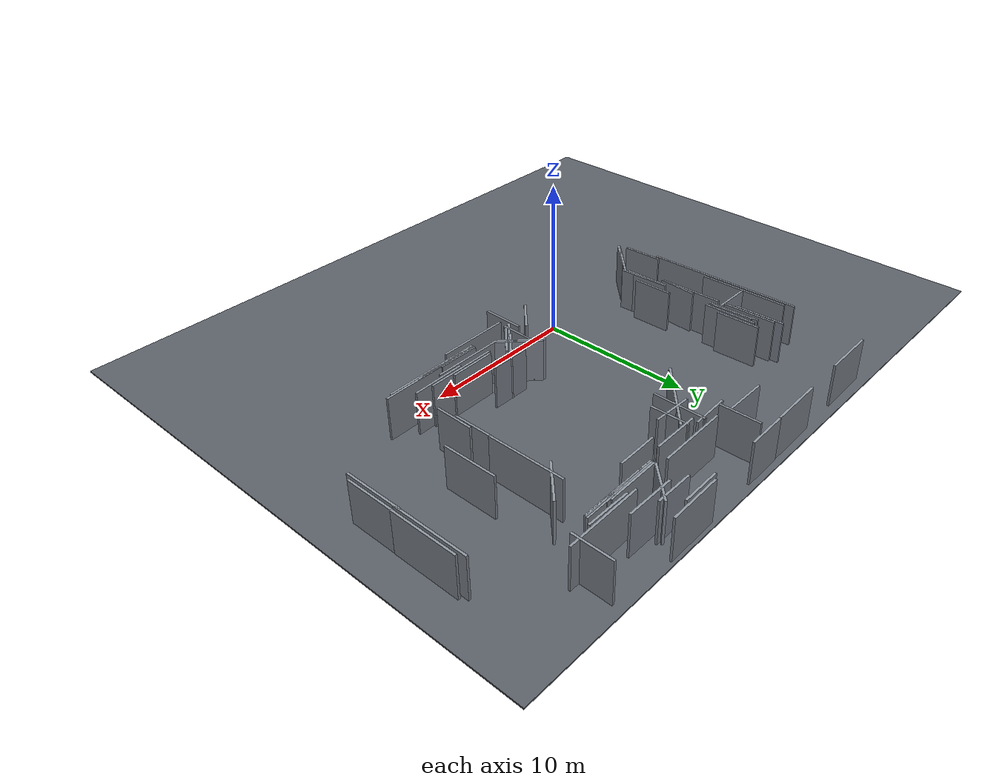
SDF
<sdf version="1.9">
 <world name="qianli_bupt_shahe_public_teaching_floor1_approx">
  <model name="floor">
   <static>true</static>
   <pose>0 0 -0.05 0 0 0</pose>
   <link name="link">
    <collision name="collision"><geometry><box><size>44.400 35.900 0.1</size></box></geometry></collision>
    <visual name="visual">
     <geometry><box><size>44.400 35.900 0.1</size></box></geometry>
     <material><ambient>0.35 0.37 0.40 1</ambient><diffuse>0.35 0.37 0.40 1</diffuse></material>
    </visual>
   </link>
  </model>
  <model name="plan_wall_004">
   <static>true</static>
   <pose>-8.270 7.250 1.400 0 0 -1.537734</pose>
   <link name="link">
    <collision name="collision"><geometry><box><size>10.286 0.140 2.800</size></box></geometry></collision>
    <visual name="visual">
     <geometry><box><size>10.286 0.140 2.800</size></box></geometry>
     <material><ambient>0.55 0.58 0.62 1</ambient><diffuse>0.55 0.58 0.62 1</diffuse></material>
    </visual>
   </link>
  </model>
  <model name="plan_wall_009">
   <static>true</static>
   <pose>11.100 0.750 1.400 0 0 0.017962</pose>
   <link name="link">
    <collision name="collision"><geometry><box><size>6.681 0.140 2.800</size></box></geometry></collision>
    <visual name="visual">
     <geometry><box><size>6.681 0.140 2.800</size></box></geometry>
     <material><ambient>0.55 0.58 0.62 1</ambient><diffuse>0.55 0.58 0.62 1</diffuse></material>
    </visual>
   </link>
  </model>
  <model name="plan_wall_012">
   <static>true</static>
   <pose>10.910 0.600 1.400 0 0 0.015973</pose>
   <link name="link">
    <collision name="collision"><geometry><box><size>6.261 0.140 2.800</size></box></geometry></collision>
    <visual name="visual">
     <geometry><box><size>6.261 0.140 2.800</size></box></geometry>
     <material><ambient>0.55 0.58 0.62 1</ambient><diffuse>0.55 0.58 0.62 1</diffuse></material>
    </visual>
   </link>
  </model>
  <model name="plan_wall_014">
   <static>true</static>
   <pose>-8.060 8.940 1.400 0 0 -1.536446</pose>
   <link name="link">
    <collision name="collision"><geometry><box><size>5.823 0.140 2.800</size></box></geometry></collision>
    <visual name="visual">
     <geometry><box><size>5.823 0.140 2.800</size></box></geometry>
     <material><ambient>0.55 0.58 0.62 1</ambient><diffuse>0.55 0.58 0.62 1</diffuse></material>
    </visual>
   </link>
  </model>
  <model name="plan_wall_025">
   <static>true</static>
   <pose>11.780 14.620 1.400 0 0 0.019228</pose>
   <link name="link">
    <collision name="collision"><geometry><box><size>5.201 0.140 2.800</size></box></geometry></collision>
    <visual name="visual">
     <geometry><box><size>5.201 0.140 2.800</size></box></geometry>
     <material><ambient>0.55 0.58 0.62 1</ambient><diffuse>0.55 0.58 0.62 1</diffuse></material>
    </visual>
   </link>
  </model>
  <model name="plan_wall_026">
   <static>true</static>
   <pose>3.940 12.200 1.400 0 0 0.733390</pose>
   <link name="link">
    <collision name="collision"><geometry><box><size>5.169 0.140 2.800</size></box></geometry></collision>
    <visual name="visual">
     <geometry><box><size>5.169 0.140 2.800</size></box></geometry>
     <material><ambient>0.55 0.58 0.62 1</ambient><diffuse>0.55 0.58 0.62 1</diffuse></material>
    </visual>
   </link>
  </model>
  <model name="plan_wall_028">
   <static>true</static>
   <pose>13.040 9.630 1.400 0 0 1.570796</pose>
   <link name="link">
    <collision name="collision"><geometry><box><size>5.040 0.140 2.800</size></box></geometry></collision>
    <visual name="visual">
     <geometry><box><size>5.040 0.140 2.800</size></box></geometry>
     <material><ambient>0.55 0.58 0.62 1</ambient><diffuse>0.55 0.58 0.62 1</diffuse></material>
    </visual>
   </link>
  </model>
  <model name="plan_wall_030">
   <static>true</static>
   <pose>13.770 15.230 1.400 0 0 0.016063</pose>
   <link name="link">
    <collision name="collision"><geometry><box><size>4.981 0.140 2.800</size></box></geometry></collision>
    <visual name="visual">
     <geometry><box><size>4.981 0.140 2.800</size></box></geometry>
     <material><ambient>0.55 0.58 0.62 1</ambient><diffuse>0.55 0.58 0.62 1</diffuse></material>
    </visual>
   </link>
  </model>
  <model name="plan_wall_031">
   <static>true</static>
   <pose>19.660 9.830 1.400 0 0 1.570796</pose>
   <link name="link">
    <collision name="collision"><geometry><box><size>4.880 0.140 2.800</size></box></geometry></collision>
    <visual name="visual">
     <geometry><box><size>4.880 0.140 2.800</size></box></geometry>
     <material><ambient>0.55 0.58 0.62 1</ambient><diffuse>0.55 0.58 0.62 1</diffuse></material>
    </visual>
   </link>
  </model>
  <model name="plan_wall_035">
   <static>true</static>
   <pose>6.230 14.950 1.400 0 0 0.017465</pose>
   <link name="link">
    <collision name="collision"><geometry><box><size>4.581 0.140 2.800</size></box></geometry></collision>
    <visual name="visual">
     <geometry><box><size>4.581 0.140 2.800</size></box></geometry>
     <material><ambient>0.55 0.58 0.62 1</ambient><diffuse>0.55 0.58 0.62 1</diffuse></material>
    </visual>
   </link>
  </model>
  <model name="plan_wall_037">
   <static>true</static>
   <pose>12.010 14.570 1.400 0 0 0.000000</pose>
   <link name="link">
    <collision name="collision"><geometry><box><size>4.580 0.140 2.800</size></box></geometry></collision>
    <visual name="visual">
     <geometry><box><size>4.580 0.140 2.800</size></box></geometry>
     <material><ambient>0.55 0.58 0.62 1</ambient><diffuse>0.55 0.58 0.62 1</diffuse></material>
    </visual>
   </link>
  </model>
  <model name="plan_wall_038">
   <static>true</static>
   <pose>11.440 14.510 1.400 0 0 0.017542</pose>
   <link name="link">
    <collision name="collision"><geometry><box><size>4.561 0.140 2.800</size></box></geometry></collision>
    <visual name="visual">
     <geometry><box><size>4.561 0.140 2.800</size></box></geometry>
     <material><ambient>0.55 0.58 0.62 1</ambient><diffuse>0.55 0.58 0.62 1</diffuse></material>
    </visual>
   </link>
  </model>
  <model name="plan_wall_039">
   <static>true</static>
   <pose>8.760 1.280 1.400 0 0 0.013157</pose>
   <link name="link">
    <collision name="collision"><geometry><box><size>4.560 0.140 2.800</size></box></geometry></collision>
    <visual name="visual">
     <geometry><box><size>4.560 0.140 2.800</size></box></geometry>
     <material><ambient>0.55 0.58 0.62 1</ambient><diffuse>0.55 0.58 0.62 1</diffuse></material>
    </visual>
   </link>
  </model>
  <model name="plan_wall_040">
   <static>true</static>
   <pose>7.140 0.020 1.400 0 0 0.013157</pose>
   <link name="link">
    <collision name="collision"><geometry><box><size>4.560 0.140 2.800</size></box></geometry></collision>
    <visual name="visual">
     <geometry><box><size>4.560 0.140 2.800</size></box></geometry>
     <material><ambient>0.55 0.58 0.62 1</ambient><diffuse>0.55 0.58 0.62 1</diffuse></material>
    </visual>
   </link>
  </model>
  <model name="plan_wall_041">
   <static>true</static>
   <pose>9.760 1.730 1.400 0 0 0.017697</pose>
   <link name="link">
    <collision name="collision"><geometry><box><size>4.521 0.140 2.800</size></box></geometry></collision>
    <visual name="visual">
     <geometry><box><size>4.521 0.140 2.800</size></box></geometry>
     <material><ambient>0.55 0.58 0.62 1</ambient><diffuse>0.55 0.58 0.62 1</diffuse></material>
    </visual>
   </link>
  </model>
  <model name="plan_wall_046">
   <static>true</static>
   <pose>9.940 0.670 1.400 0 0 0.018347</pose>
   <link name="link">
    <collision name="collision"><geometry><box><size>4.361 0.140 2.800</size></box></geometry></collision>
    <visual name="visual">
     <geometry><box><size>4.361 0.140 2.800</size></box></geometry>
     <material><ambient>0.55 0.58 0.62 1</ambient><diffuse>0.55 0.58 0.62 1</diffuse></material>
    </visual>
   </link>
  </model>
  <model name="plan_wall_047">
   <static>true</static>
   <pose>19.940 9.690 1.400 0 0 1.570796</pose>
   <link name="link">
    <collision name="collision"><geometry><box><size>4.360 0.140 2.800</size></box></geometry></collision>
    <visual name="visual">
     <geometry><box><size>4.360 0.140 2.800</size></box></geometry>
     <material><ambient>0.55 0.58 0.62 1</ambient><diffuse>0.55 0.58 0.62 1</diffuse></material>
    </visual>
   </link>
  </model>
  <model name="plan_wall_050">
   <static>true</static>
   <pose>12.200 14.510 1.400 0 0 0.019228</pose>
   <link name="link">
    <collision name="collision"><geometry><box><size>4.161 0.140 2.800</size></box></geometry></collision>
    <visual name="visual">
     <geometry><box><size>4.161 0.140 2.800</size></box></geometry>
     <material><ambient>0.55 0.58 0.62 1</ambient><diffuse>0.55 0.58 0.62 1</diffuse></material>
    </visual>
   </link>
  </model>
  <model name="plan_wall_058">
   <static>true</static>
   <pose>-5.840 6.510 1.400 0 0 -1.540805</pose>
   <link name="link">
    <collision name="collision"><geometry><box><size>4.002 0.140 2.800</size></box></geometry></collision>
    <visual name="visual">
     <geometry><box><size>4.002 0.140 2.800</size></box></geometry>
     <material><ambient>0.55 0.58 0.62 1</ambient><diffuse>0.55 0.58 0.62 1</diffuse></material>
    </visual>
   </link>
  </model>
  <model name="plan_wall_061">
   <static>true</static>
   <pose>19.640 5.900 1.400 0 0 1.570796</pose>
   <link name="link">
    <collision name="collision"><geometry><box><size>3.900 0.140 2.800</size></box></geometry></collision>
    <visual name="visual">
     <geometry><box><size>3.900 0.140 2.800</size></box></geometry>
     <material><ambient>0.55 0.58 0.62 1</ambient><diffuse>0.55 0.58 0.62 1</diffuse></material>
    </visual>
   </link>
  </model>
  <model name="plan_wall_069">
   <static>true</static>
   <pose>12.510 14.500 1.400 0 0 0.016573</pose>
   <link name="link">
    <collision name="collision"><geometry><box><size>3.620 0.140 2.800</size></box></geometry></collision>
    <visual name="visual">
     <geometry><box><size>3.620 0.140 2.800</size></box></geometry>
     <material><ambient>0.55 0.58 0.62 1</ambient><diffuse>0.55 0.58 0.62 1</diffuse></material>
    </visual>
   </link>
  </model>
  <model name="plan_wall_072">
   <static>true</static>
   <pose>0.190 17.440 1.400 0 0 0.016948</pose>
   <link name="link">
    <collision name="collision"><geometry><box><size>3.541 0.140 2.800</size></box></geometry></collision>
    <visual name="visual">
     <geometry><box><size>3.541 0.140 2.800</size></box></geometry>
     <material><ambient>0.55 0.58 0.62 1</ambient><diffuse>0.55 0.58 0.62 1</diffuse></material>
    </visual>
   </link>
  </model>
  <model name="plan_wall_073">
   <static>true</static>
   <pose>-6.390 0.520 1.400 0 0 0.785398</pose>
   <link name="link">
    <collision name="collision"><geometry><box><size>3.536 0.140 2.800</size></box></geometry></collision>
    <visual name="visual">
     <geometry><box><size>3.536 0.140 2.800</size></box></geometry>
     <material><ambient>0.55 0.58 0.62 1</ambient><diffuse>0.55 0.58 0.62 1</diffuse></material>
    </visual>
   </link>
  </model>
  <model name="plan_wall_074">
   <static>true</static>
   <pose>-6.020 17.300 1.400 0 0 0.017044</pose>
   <link name="link">
    <collision name="collision"><geometry><box><size>3.521 0.140 2.800</size></box></geometry></collision>
    <visual name="visual">
     <geometry><box><size>3.521 0.140 2.800</size></box></geometry>
     <material><ambient>0.55 0.58 0.62 1</ambient><diffuse>0.55 0.58 0.62 1</diffuse></material>
    </visual>
   </link>
  </model>
  <model name="plan_wall_075">
   <static>true</static>
   <pose>9.960 17.660 1.400 0 0 0.017044</pose>
   <link name="link">
    <collision name="collision"><geometry><box><size>3.521 0.140 2.800</size></box></geometry></collision>
    <visual name="visual">
     <geometry><box><size>3.521 0.140 2.800</size></box></geometry>
     <material><ambient>0.55 0.58 0.62 1</ambient><diffuse>0.55 0.58 0.62 1</diffuse></material>
    </visual>
   </link>
  </model>
  <model name="plan_wall_077">
   <static>true</static>
   <pose>15.080 7.750 1.400 0 0 1.570796</pose>
   <link name="link">
    <collision name="collision"><geometry><box><size>3.520 0.140 2.800</size></box></geometry></collision>
    <visual name="visual">
     <geometry><box><size>3.520 0.140 2.800</size></box></geometry>
     <material><ambient>0.55 0.58 0.62 1</ambient><diffuse>0.55 0.58 0.62 1</diffuse></material>
    </visual>
   </link>
  </model>
  <model name="plan_wall_078">
   <static>true</static>
   <pose>11.230 14.570 1.400 0 0 0.068464</pose>
   <link name="link">
    <collision name="collision"><geometry><box><size>3.508 0.140 2.800</size></box></geometry></collision>
    <visual name="visual">
     <geometry><box><size>3.508 0.140 2.800</size></box></geometry>
     <material><ambient>0.55 0.58 0.62 1</ambient><diffuse>0.55 0.58 0.62 1</diffuse></material>
    </visual>
   </link>
  </model>
  <model name="plan_wall_079">
   <static>true</static>
   <pose>10.910 14.700 1.400 0 0 0.017141</pose>
   <link name="link">
    <collision name="collision"><geometry><box><size>3.501 0.140 2.800</size></box></geometry></collision>
    <visual name="visual">
     <geometry><box><size>3.501 0.140 2.800</size></box></geometry>
     <material><ambient>0.55 0.58 0.62 1</ambient><diffuse>0.55 0.58 0.62 1</diffuse></material>
    </visual>
   </link>
  </model>
  <model name="plan_wall_081">
   <static>true</static>
   <pose>-5.960 10.670 1.400 0 0 -1.536327</pose>
   <link name="link">
    <collision name="collision"><geometry><box><size>3.482 0.140 2.800</size></box></geometry></collision>
    <visual name="visual">
     <geometry><box><size>3.482 0.140 2.800</size></box></geometry>
     <material><ambient>0.55 0.58 0.62 1</ambient><diffuse>0.55 0.58 0.62 1</diffuse></material>
    </visual>
   </link>
  </model>
  <model name="plan_wall_083">
   <static>true</static>
   <pose>19.920 6.090 1.400 0 0 1.570796</pose>
   <link name="link">
    <collision name="collision"><geometry><box><size>3.440 0.140 2.800</size></box></geometry></collision>
    <visual name="visual">
     <geometry><box><size>3.440 0.140 2.800</size></box></geometry>
     <material><ambient>0.55 0.58 0.62 1</ambient><diffuse>0.55 0.58 0.62 1</diffuse></material>
    </visual>
   </link>
  </model>
  <model name="plan_wall_084">
   <static>true</static>
   <pose>-5.110 9.840 1.400 0 0 -1.541565</pose>
   <link name="link">
    <collision name="collision"><geometry><box><size>3.421 0.140 2.800</size></box></geometry></collision>
    <visual name="visual">
     <geometry><box><size>3.421 0.140 2.800</size></box></geometry>
     <material><ambient>0.55 0.58 0.62 1</ambient><diffuse>0.55 0.58 0.62 1</diffuse></material>
    </visual>
   </link>
  </model>
  <model name="plan_wall_085">
   <static>true</static>
   <pose>11.370 1.560 1.400 0 0 0.029231</pose>
   <link name="link">
    <collision name="collision"><geometry><box><size>3.421 0.140 2.800</size></box></geometry></collision>
    <visual name="visual">
     <geometry><box><size>3.421 0.140 2.800</size></box></geometry>
     <material><ambient>0.55 0.58 0.62 1</ambient><diffuse>0.55 0.58 0.62 1</diffuse></material>
    </visual>
   </link>
  </model>
  <model name="plan_wall_087">
   <static>true</static>
   <pose>4.580 12.920 1.400 0 0 1.570796</pose>
   <link name="link">
    <collision name="collision"><geometry><box><size>3.340 0.140 2.800</size></box></geometry></collision>
    <visual name="visual">
     <geometry><box><size>3.340 0.140 2.800</size></box></geometry>
     <material><ambient>0.55 0.58 0.62 1</ambient><diffuse>0.55 0.58 0.62 1</diffuse></material>
    </visual>
   </link>
  </model>
  <model name="plan_wall_088">
   <static>true</static>
   <pose>-5.510 9.860 1.400 0 0 -1.516305</pose>
   <link name="link">
    <collision name="collision"><geometry><box><size>3.305 0.140 2.800</size></box></geometry></collision>
    <visual name="visual">
     <geometry><box><size>3.305 0.140 2.800</size></box></geometry>
     <material><ambient>0.55 0.58 0.62 1</ambient><diffuse>0.55 0.58 0.62 1</diffuse></material>
    </visual>
   </link>
  </model>
  <model name="plan_wall_092">
   <static>true</static>
   <pose>-5.210 3.210 1.400 0 0 -1.515973</pose>
   <link name="link">
    <collision name="collision"><geometry><box><size>3.285 0.140 2.800</size></box></geometry></collision>
    <visual name="visual">
     <geometry><box><size>3.285 0.140 2.800</size></box></geometry>
     <material><ambient>0.55 0.58 0.62 1</ambient><diffuse>0.55 0.58 0.62 1</diffuse></material>
    </visual>
   </link>
  </model>
  <model name="plan_wall_095">
   <static>true</static>
   <pose>-6.180 11.270 1.400 0 0 -1.533776</pose>
   <link name="link">
    <collision name="collision"><geometry><box><size>3.242 0.140 2.800</size></box></geometry></collision>
    <visual name="visual">
     <geometry><box><size>3.242 0.140 2.800</size></box></geometry>
     <material><ambient>0.55 0.58 0.62 1</ambient><diffuse>0.55 0.58 0.62 1</diffuse></material>
    </visual>
   </link>
  </model>
  <model name="plan_wall_101">
   <static>true</static>
   <pose>11.280 16.010 1.400 0 0 0.000000</pose>
   <link name="link">
    <collision name="collision"><geometry><box><size>3.160 0.140 2.800</size></box></geometry></collision>
    <visual name="visual">
     <geometry><box><size>3.160 0.140 2.800</size></box></geometry>
     <material><ambient>0.55 0.58 0.62 1</ambient><diffuse>0.55 0.58 0.62 1</diffuse></material>
    </visual>
   </link>
  </model>
  <model name="plan_wall_103">
   <static>true</static>
   <pose>5.750 1.600 1.400 0 0 0.785398</pose>
   <link name="link">
    <collision name="collision"><geometry><box><size>3.140 0.140 2.800</size></box></geometry></collision>
    <visual name="visual">
     <geometry><box><size>3.140 0.140 2.800</size></box></geometry>
     <material><ambient>0.55 0.58 0.62 1</ambient><diffuse>0.55 0.58 0.62 1</diffuse></material>
    </visual>
   </link>
  </model>
  <model name="plan_wall_105">
   <static>true</static>
   <pose>6.520 14.090 1.400 0 0 0.012820</pose>
   <link name="link">
    <collision name="collision"><geometry><box><size>3.120 0.140 2.800</size></box></geometry></collision>
    <visual name="visual">
     <geometry><box><size>3.120 0.140 2.800</size></box></geometry>
     <material><ambient>0.55 0.58 0.62 1</ambient><diffuse>0.55 0.58 0.62 1</diffuse></material>
    </visual>
   </link>
  </model>
  <model name="plan_wall_110">
   <static>true</static>
   <pose>-5.320 3.330 1.400 0 0 -1.557639</pose>
   <link name="link">
    <collision name="collision"><geometry><box><size>3.040 0.140 2.800</size></box></geometry></collision>
    <visual name="visual">
     <geometry><box><size>3.040 0.140 2.800</size></box></geometry>
     <material><ambient>0.55 0.58 0.62 1</ambient><diffuse>0.55 0.58 0.62 1</diffuse></material>
    </visual>
   </link>
  </model>
  <model name="plan_wall_112">
   <static>true</static>
   <pose>5.720 2.230 1.400 0 0 -0.785398</pose>
   <link name="link">
    <collision name="collision"><geometry><box><size>2.998 0.140 2.800</size></box></geometry></collision>
    <visual name="visual">
     <geometry><box><size>2.998 0.140 2.800</size></box></geometry>
     <material><ambient>0.55 0.58 0.62 1</ambient><diffuse>0.55 0.58 0.62 1</diffuse></material>
    </visual>
   </link>
  </model>
  <model name="plan_wall_121">
   <static>true</static>
   <pose>13.490 11.800 1.400 0 0 0.785398</pose>
   <link name="link">
    <collision name="collision"><geometry><box><size>2.913 0.140 2.800</size></box></geometry></collision>
    <visual name="visual">
     <geometry><box><size>2.913 0.140 2.800</size></box></geometry>
     <material><ambient>0.55 0.58 0.62 1</ambient><diffuse>0.55 0.58 0.62 1</diffuse></material>
    </visual>
   </link>
  </model>
  <model name="plan_wall_122">
   <static>true</static>
   <pose>9.090 1.910 1.400 0 0 0.013792</pose>
   <link name="link">
    <collision name="collision"><geometry><box><size>2.900 0.140 2.800</size></box></geometry></collision>
    <visual name="visual">
     <geometry><box><size>2.900 0.140 2.800</size></box></geometry>
     <material><ambient>0.55 0.58 0.62 1</ambient><diffuse>0.55 0.58 0.62 1</diffuse></material>
    </visual>
   </link>
  </model>
  <model name="plan_wall_126">
   <static>true</static>
   <pose>13.220 15.030 1.400 0 0 0.000000</pose>
   <link name="link">
    <collision name="collision"><geometry><box><size>2.880 0.140 2.800</size></box></geometry></collision>
    <visual name="visual">
     <geometry><box><size>2.880 0.140 2.800</size></box></geometry>
     <material><ambient>0.55 0.58 0.62 1</ambient><diffuse>0.55 0.58 0.62 1</diffuse></material>
    </visual>
   </link>
  </model>
  <model name="plan_wall_130">
   <static>true</static>
   <pose>5.450 2.280 1.400 0 0 -0.785398</pose>
   <link name="link">
    <collision name="collision"><geometry><box><size>2.857 0.140 2.800</size></box></geometry></collision>
    <visual name="visual">
     <geometry><box><size>2.857 0.140 2.800</size></box></geometry>
     <material><ambient>0.55 0.58 0.62 1</ambient><diffuse>0.55 0.58 0.62 1</diffuse></material>
    </visual>
   </link>
  </model>
  <model name="plan_wall_133">
   <static>true</static>
   <pose>1.600 15.130 1.400 0 0 0.000000</pose>
   <link name="link">
    <collision name="collision"><geometry><box><size>2.840 0.140 2.800</size></box></geometry></collision>
    <visual name="visual">
     <geometry><box><size>2.840 0.140 2.800</size></box></geometry>
     <material><ambient>0.55 0.58 0.62 1</ambient><diffuse>0.55 0.58 0.62 1</diffuse></material>
    </visual>
   </link>
  </model>
  <model name="plan_wall_137">
   <static>true</static>
   <pose>-4.830 10.590 1.400 0 0 -1.535097</pose>
   <link name="link">
    <collision name="collision"><geometry><box><size>2.802 0.140 2.800</size></box></geometry></collision>
    <visual name="visual">
     <geometry><box><size>2.802 0.140 2.800</size></box></geometry>
     <material><ambient>0.55 0.58 0.62 1</ambient><diffuse>0.55 0.58 0.62 1</diffuse></material>
    </visual>
   </link>
  </model>
  <model name="plan_wall_141">
   <static>true</static>
   <pose>-6.740 8.910 1.400 0 0 0.000000</pose>
   <link name="link">
    <collision name="collision"><geometry><box><size>2.800 0.140 2.800</size></box></geometry></collision>
    <visual name="visual">
     <geometry><box><size>2.800 0.140 2.800</size></box></geometry>
     <material><ambient>0.55 0.58 0.62 1</ambient><diffuse>0.55 0.58 0.62 1</diffuse></material>
    </visual>
   </link>
  </model>
  <model name="plan_wall_143">
   <static>true</static>
   <pose>10.120 15.750 1.400 0 0 0.805803</pose>
   <link name="link">
    <collision name="collision"><geometry><box><size>2.772 0.140 2.800</size></box></geometry></collision>
    <visual name="visual">
     <geometry><box><size>2.772 0.140 2.800</size></box></geometry>
     <material><ambient>0.55 0.58 0.62 1</ambient><diffuse>0.55 0.58 0.62 1</diffuse></material>
    </visual>
   </link>
  </model>
  <model name="plan_wall_144">
   <static>true</static>
   <pose>-5.410 9.770 1.400 0 0 -1.505671</pose>
   <link name="link">
    <collision name="collision"><geometry><box><size>2.766 0.140 2.800</size></box></geometry></collision>
    <visual name="visual">
     <geometry><box><size>2.766 0.140 2.800</size></box></geometry>
     <material><ambient>0.55 0.58 0.62 1</ambient><diffuse>0.55 0.58 0.62 1</diffuse></material>
    </visual>
   </link>
  </model>
  <model name="plan_wall_151">
   <static>true</static>
   <pose>5.910 1.500 1.400 0 0 0.785398</pose>
   <link name="link">
    <collision name="collision"><geometry><box><size>2.687 0.140 2.800</size></box></geometry></collision>
    <visual name="visual">
     <geometry><box><size>2.687 0.140 2.800</size></box></geometry>
     <material><ambient>0.55 0.58 0.62 1</ambient><diffuse>0.55 0.58 0.62 1</diffuse></material>
    </visual>
   </link>
  </model>
  <model name="plan_wall_153">
   <static>true</static>
   <pose>8.980 13.480 1.400 0 0 0.022384</pose>
   <link name="link">
    <collision name="collision"><geometry><box><size>2.681 0.140 2.800</size></box></geometry></collision>
    <visual name="visual">
     <geometry><box><size>2.681 0.140 2.800</size></box></geometry>
     <material><ambient>0.55 0.58 0.62 1</ambient><diffuse>0.55 0.58 0.62 1</diffuse></material>
    </visual>
   </link>
  </model>
  <model name="plan_wall_157">
   <static>true</static>
   <pose>9.110 0.790 1.400 0 0 0.015036</pose>
   <link name="link">
    <collision name="collision"><geometry><box><size>2.660 0.140 2.800</size></box></geometry></collision>
    <visual name="visual">
     <geometry><box><size>2.660 0.140 2.800</size></box></geometry>
     <material><ambient>0.55 0.58 0.62 1</ambient><diffuse>0.55 0.58 0.62 1</diffuse></material>
    </visual>
   </link>
  </model>
  <model name="plan_wall_158">
   <static>true</static>
   <pose>4.460 -0.160 1.400 0 0 1.555760</pose>
   <link name="link">
    <collision name="collision"><geometry><box><size>2.660 0.140 2.800</size></box></geometry></collision>
    <visual name="visual">
     <geometry><box><size>2.660 0.140 2.800</size></box></geometry>
     <material><ambient>0.55 0.58 0.62 1</ambient><diffuse>0.55 0.58 0.62 1</diffuse></material>
    </visual>
   </link>
  </model>
  <model name="plan_wall_161">
   <static>true</static>
   <pose>3.300 17.510 1.400 0 0 0.015150</pose>
   <link name="link">
    <collision name="collision"><geometry><box><size>2.640 0.140 2.800</size></box></geometry></collision>
    <visual name="visual">
     <geometry><box><size>2.640 0.140 2.800</size></box></geometry>
     <material><ambient>0.55 0.58 0.62 1</ambient><diffuse>0.55 0.58 0.62 1</diffuse></material>
    </visual>
   </link>
  </model>
  <model name="plan_wall_164">
   <static>true</static>
   <pose>-6.670 0.180 1.400 0 0 0.785398</pose>
   <link name="link">
    <collision name="collision"><geometry><box><size>2.630 0.140 2.800</size></box></geometry></collision>
    <visual name="visual">
     <geometry><box><size>2.630 0.140 2.800</size></box></geometry>
     <material><ambient>0.55 0.58 0.62 1</ambient><diffuse>0.55 0.58 0.62 1</diffuse></material>
    </visual>
   </link>
  </model>
  <model name="plan_wall_166">
   <static>true</static>
   <pose>-7.820 1.140 1.400 0 0 -1.540271</pose>
   <link name="link">
    <collision name="collision"><geometry><box><size>2.621 0.140 2.800</size></box></geometry></collision>
    <visual name="visual">
     <geometry><box><size>2.621 0.140 2.800</size></box></geometry>
     <material><ambient>0.55 0.58 0.62 1</ambient><diffuse>0.55 0.58 0.62 1</diffuse></material>
    </visual>
   </link>
  </model>
  <model name="plan_wall_169">
   <static>true</static>
   <pose>6.340 2.270 1.400 0 0 0.785398</pose>
   <link name="link">
    <collision name="collision"><geometry><box><size>2.602 0.140 2.800</size></box></geometry></collision>
    <visual name="visual">
     <geometry><box><size>2.602 0.140 2.800</size></box></geometry>
     <material><ambient>0.55 0.58 0.62 1</ambient><diffuse>0.55 0.58 0.62 1</diffuse></material>
    </visual>
   </link>
  </model>
  <model name="plan_wall_175">
   <static>true</static>
   <pose>-4.660 4.340 1.400 0 0 -1.555294</pose>
   <link name="link">
    <collision name="collision"><geometry><box><size>2.580 0.140 2.800</size></box></geometry></collision>
    <visual name="visual">
     <geometry><box><size>2.580 0.140 2.800</size></box></geometry>
     <material><ambient>0.55 0.58 0.62 1</ambient><diffuse>0.55 0.58 0.62 1</diffuse></material>
    </visual>
   </link>
  </model>
  <model name="plan_wall_176">
   <static>true</static>
   <pose>15.580 16.020 1.400 0 0 1.555294</pose>
   <link name="link">
    <collision name="collision"><geometry><box><size>2.580 0.140 2.800</size></box></geometry></collision>
    <visual name="visual">
     <geometry><box><size>2.580 0.140 2.800</size></box></geometry>
     <material><ambient>0.55 0.58 0.62 1</ambient><diffuse>0.55 0.58 0.62 1</diffuse></material>
    </visual>
   </link>
  </model>
  <model name="plan_wall_177">
   <static>true</static>
   <pose>3.020 15.720 1.400 0 0 -1.555294</pose>
   <link name="link">
    <collision name="collision"><geometry><box><size>2.580 0.140 2.800</size></box></geometry></collision>
    <visual name="visual">
     <geometry><box><size>2.580 0.140 2.800</size></box></geometry>
     <material><ambient>0.55 0.58 0.62 1</ambient><diffuse>0.55 0.58 0.62 1</diffuse></material>
    </visual>
   </link>
  </model>
  <model name="plan_wall_180">
   <static>true</static>
   <pose>9.120 17.390 1.400 0 0 0.015624</pose>
   <link name="link">
    <collision name="collision"><geometry><box><size>2.560 0.140 2.800</size></box></geometry></collision>
    <visual name="visual">
     <geometry><box><size>2.560 0.140 2.800</size></box></geometry>
     <material><ambient>0.55 0.58 0.62 1</ambient><diffuse>0.55 0.58 0.62 1</diffuse></material>
    </visual>
   </link>
  </model>
  <model name="plan_wall_189">
   <static>true</static>
   <pose>-5.700 5.530 1.400 0 0 1.507389</pose>
   <link name="link">
    <collision name="collision"><geometry><box><size>2.525 0.140 2.800</size></box></geometry></collision>
    <visual name="visual">
     <geometry><box><size>2.525 0.140 2.800</size></box></geometry>
     <material><ambient>0.55 0.58 0.62 1</ambient><diffuse>0.55 0.58 0.62 1</diffuse></material>
    </visual>
   </link>
  </model>
  <model name="plan_wall_190">
   <static>true</static>
   <pose>5.060 12.820 1.400 0 0 -0.039662</pose>
   <link name="link">
    <collision name="collision"><geometry><box><size>2.522 0.140 2.800</size></box></geometry></collision>
    <visual name="visual">
     <geometry><box><size>2.522 0.140 2.800</size></box></geometry>
     <material><ambient>0.55 0.58 0.62 1</ambient><diffuse>0.55 0.58 0.62 1</diffuse></material>
    </visual>
   </link>
  </model>
  <model name="plan_wall_195">
   <static>true</static>
   <pose>13.200 4.680 1.400 0 0 1.554798</pose>
   <link name="link">
    <collision name="collision"><geometry><box><size>2.500 0.140 2.800</size></box></geometry></collision>
    <visual name="visual">
     <geometry><box><size>2.500 0.140 2.800</size></box></geometry>
     <material><ambient>0.55 0.58 0.62 1</ambient><diffuse>0.55 0.58 0.62 1</diffuse></material>
    </visual>
   </link>
  </model>
  <model name="plan_wall_196">
   <static>true</static>
   <pose>13.020 5.920 1.400 0 0 1.570796</pose>
   <link name="link">
    <collision name="collision"><geometry><box><size>2.500 0.140 2.800</size></box></geometry></collision>
    <visual name="visual">
     <geometry><box><size>2.500 0.140 2.800</size></box></geometry>
     <material><ambient>0.55 0.58 0.62 1</ambient><diffuse>0.55 0.58 0.62 1</diffuse></material>
    </visual>
   </link>
  </model>
  <model name="plan_wall_197">
   <static>true</static>
   <pose>7.270 3.110 1.400 0 0 0.000000</pose>
   <link name="link">
    <collision name="collision"><geometry><box><size>2.500 0.140 2.800</size></box></geometry></collision>
    <visual name="visual">
     <geometry><box><size>2.500 0.140 2.800</size></box></geometry>
     <material><ambient>0.55 0.58 0.62 1</ambient><diffuse>0.55 0.58 0.62 1</diffuse></material>
    </visual>
   </link>
  </model>
  <model name="plan_wall_201">
   <static>true</static>
   <pose>10.040 16.490 1.400 0 0 0.000000</pose>
   <link name="link">
    <collision name="collision"><geometry><box><size>2.480 0.140 2.800</size></box></geometry></collision>
    <visual name="visual">
     <geometry><box><size>2.480 0.140 2.800</size></box></geometry>
     <material><ambient>0.55 0.58 0.62 1</ambient><diffuse>0.55 0.58 0.62 1</diffuse></material>
    </visual>
   </link>
  </model>
  <model name="plan_wall_203">
   <static>true</static>
   <pose>3.890 14.410 1.400 0 0 0.032509</pose>
   <link name="link">
    <collision name="collision"><geometry><box><size>2.461 0.140 2.800</size></box></geometry></collision>
    <visual name="visual">
     <geometry><box><size>2.461 0.140 2.800</size></box></geometry>
     <material><ambient>0.55 0.58 0.62 1</ambient><diffuse>0.55 0.58 0.62 1</diffuse></material>
    </visual>
   </link>
  </model>
  <model name="plan_wall_206">
   <static>true</static>
   <pose>3.250 0.600 1.400 0 0 0.785398</pose>
   <link name="link">
    <collision name="collision"><geometry><box><size>2.461 0.140 2.800</size></box></geometry></collision>
    <visual name="visual">
     <geometry><box><size>2.461 0.140 2.800</size></box></geometry>
     <material><ambient>0.55 0.58 0.62 1</ambient><diffuse>0.55 0.58 0.62 1</diffuse></material>
    </visual>
   </link>
  </model>
  <model name="plan_wall_207">
   <static>true</static>
   <pose>5.020 1.720 1.400 0 0 1.554538</pose>
   <link name="link">
    <collision name="collision"><geometry><box><size>2.460 0.140 2.800</size></box></geometry></collision>
    <visual name="visual">
     <geometry><box><size>2.460 0.140 2.800</size></box></geometry>
     <material><ambient>0.55 0.58 0.62 1</ambient><diffuse>0.55 0.58 0.62 1</diffuse></material>
    </visual>
   </link>
  </model>
  <model name="plan_wall_215">
   <static>true</static>
   <pose>5.580 13.020 1.400 0 0 -1.554269</pose>
   <link name="link">
    <collision name="collision"><geometry><box><size>2.420 0.140 2.800</size></box></geometry></collision>
    <visual name="visual">
     <geometry><box><size>2.420 0.140 2.800</size></box></geometry>
     <material><ambient>0.55 0.58 0.62 1</ambient><diffuse>0.55 0.58 0.62 1</diffuse></material>
    </visual>
   </link>
  </model>
  <model name="plan_wall_218">
   <static>true</static>
   <pose>-5.220 3.670 1.400 0 0 -1.520838</pose>
   <link name="link">
    <collision name="collision"><geometry><box><size>2.403 0.140 2.800</size></box></geometry></collision>
    <visual name="visual">
     <geometry><box><size>2.403 0.140 2.800</size></box></geometry>
     <material><ambient>0.55 0.58 0.62 1</ambient><diffuse>0.55 0.58 0.62 1</diffuse></material>
    </visual>
   </link>
  </model>
 </world>
</sdf>
